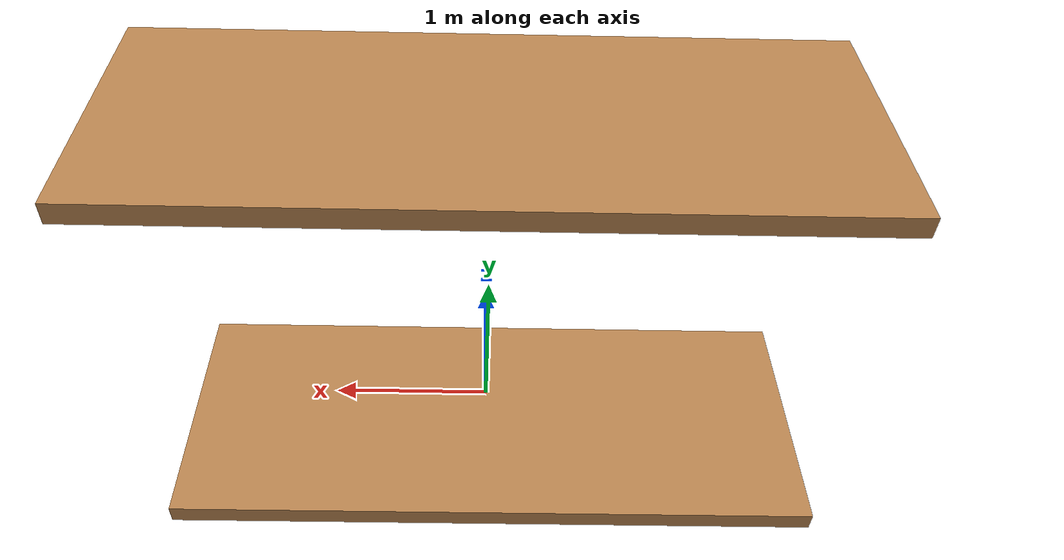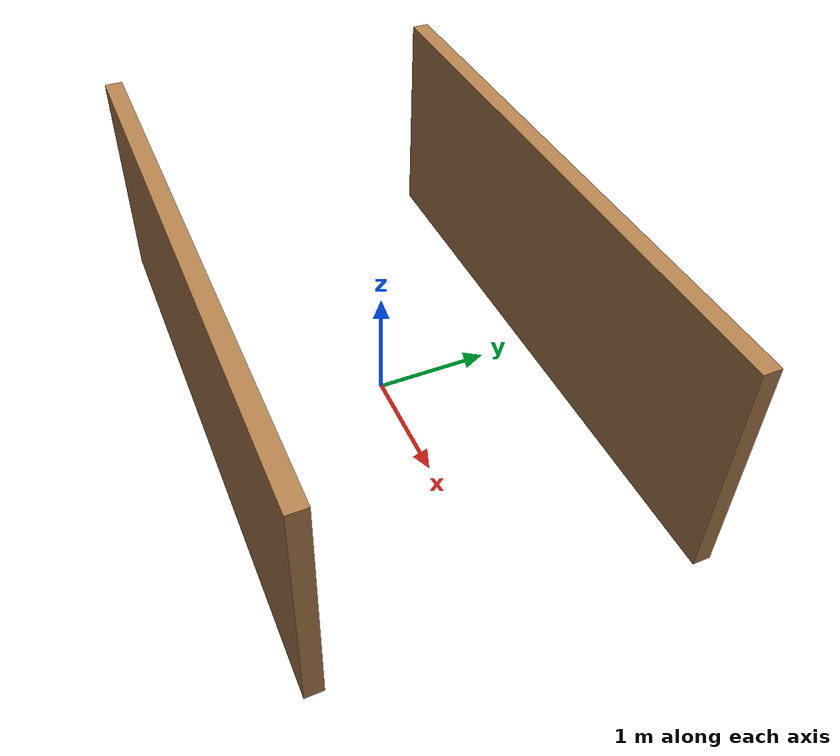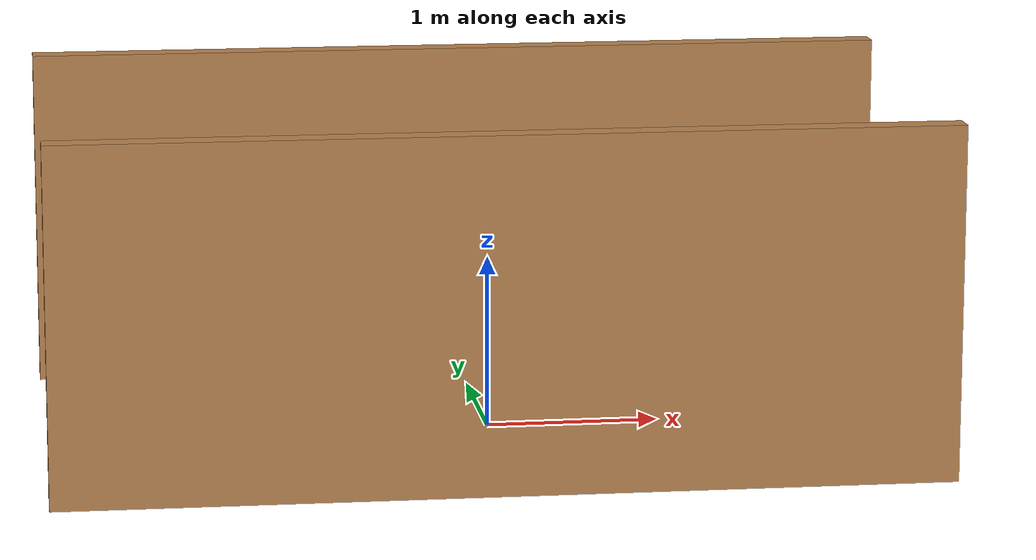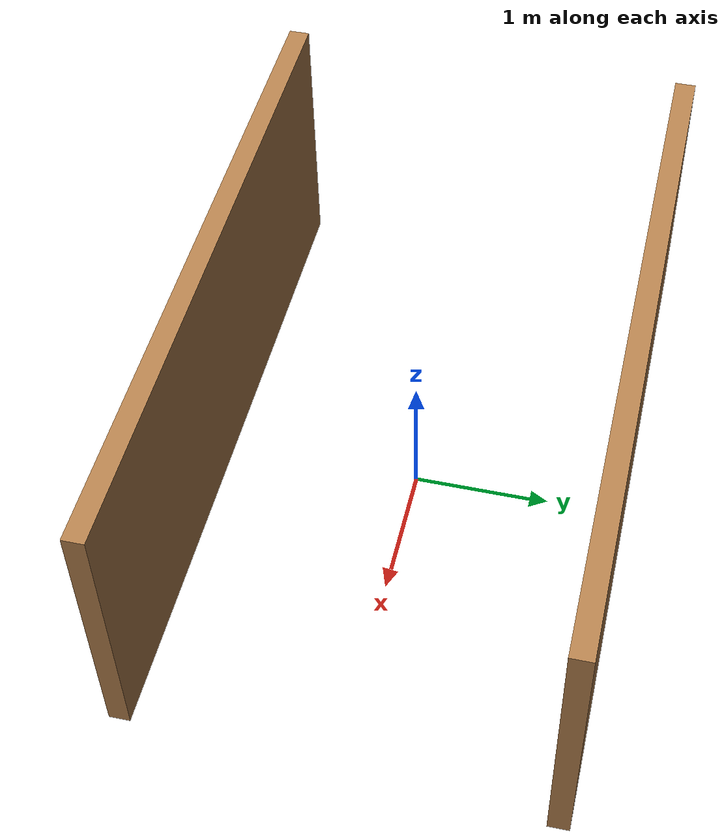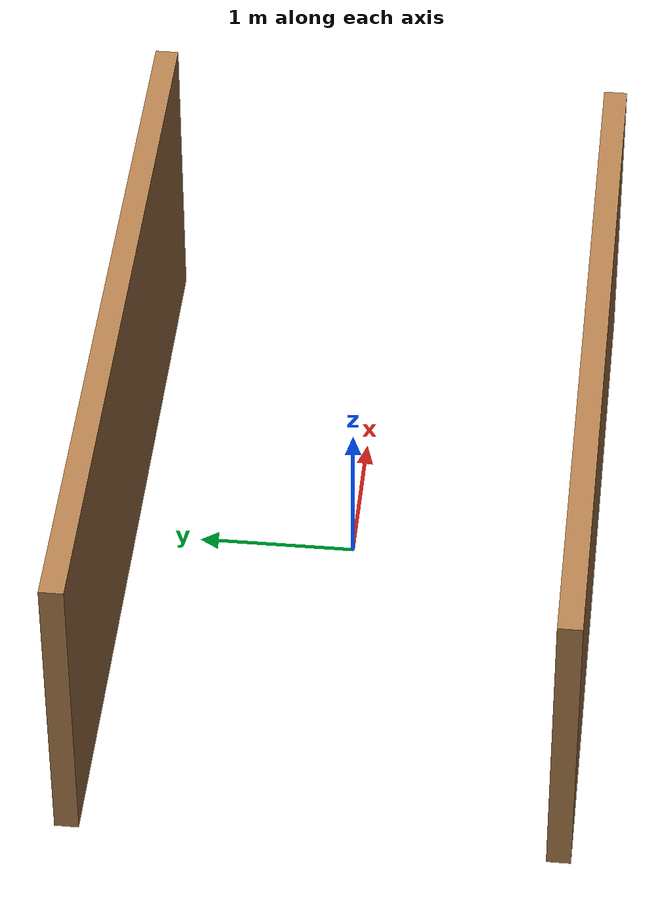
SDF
<?xml version='1.0'?>
<sdf version='1.6'>
  <model name='corridor'>
    <pose frame=''>0 0 0 0 -0 0</pose>
    <link name='Wall_0'>
      <collision name='Wall_0_Collision'>
        <geometry>
          <box>
            <size>5 0.15 2</size>
          </box>
        </geometry>
        <pose frame=''>0 0 1 0 -0 0</pose>
      </collision>
      <visual name='Wall_0_Visual'>
        <pose frame=''>0 0 1 0 -0 0</pose>
        <geometry>
          <box>
            <size>5 0.15 2</size>
          </box>
        </geometry>
        <material>
          <script>
            <uri>file://media/materials/scripts/gazebo.material</uri>
            <name>Gazebo/Wood</name>
          </script>
          <ambient>1 1 1 1</ambient>
        </material>
        <meta>
          <layer>0</layer>
        </meta>
      </visual>
      <pose frame=''>-0.075 -1.5 0 0 -0 0</pose>
    </link>
    <link name='Wall_4'>
      <collision name='Wall_4_Collision'>
        <geometry>
          <box>
            <size>5.15 0.15 2</size>
          </box>
        </geometry>
        <pose frame=''>0 0 1 0 -0 0</pose>
      </collision>
      <visual name='Wall_4_Visual'>
        <pose frame=''>0 0 1 0 -0 0</pose>
        <geometry>
          <box>
            <size>5.15 0.15 2</size>
          </box>
        </geometry>
        <material>
          <script>
            <uri>file://media/materials/scripts/gazebo.material</uri>
            <name>Gazebo/Wood</name>
          </script>
          <ambient>1 1 1 1</ambient>
        </material>
        <meta>
          <layer>0</layer>
        </meta>
      </visual>
      <pose frame=''>0 1.5 0 0 -0 0</pose>
    </link>
    <static>1</static>
  </model>
</sdf>
